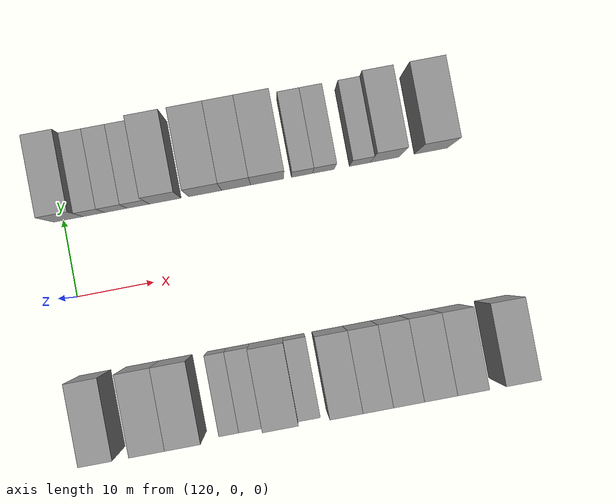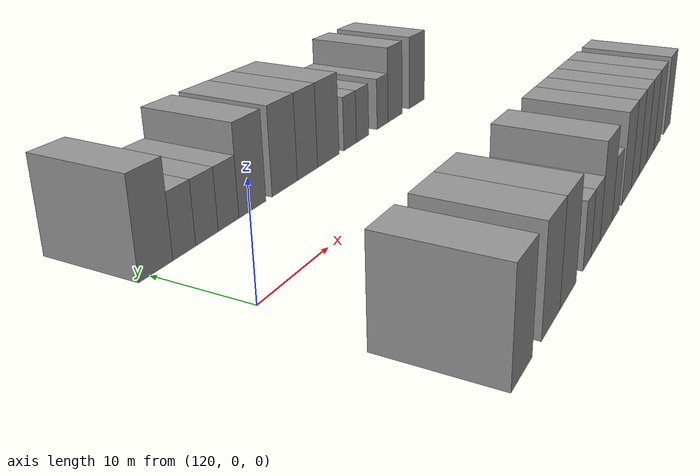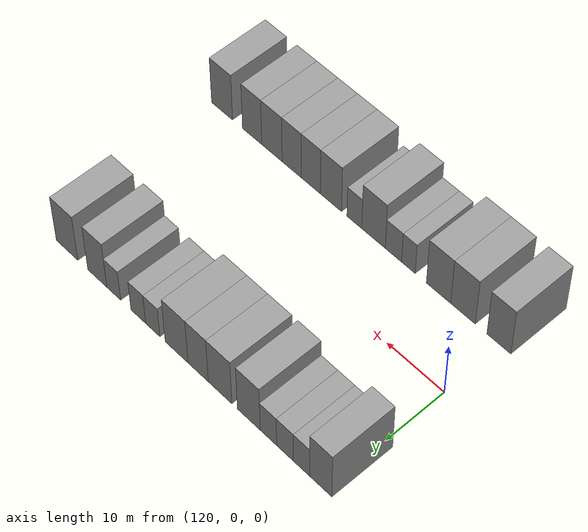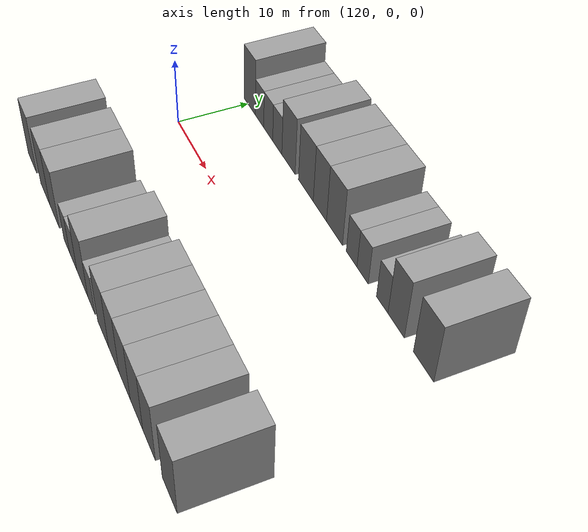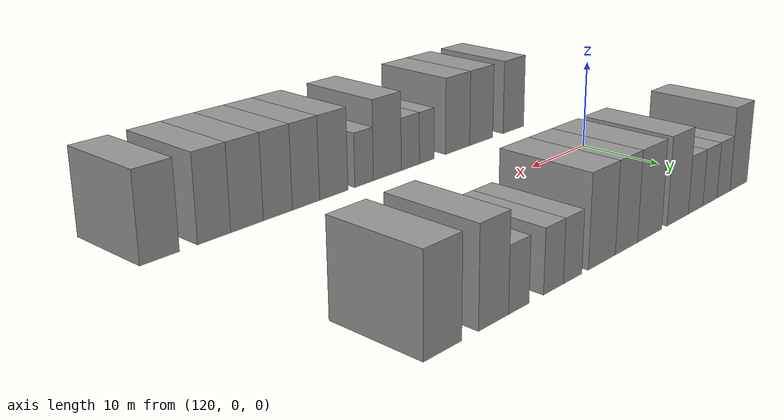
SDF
<sdf version="1.6">
 <world name="default">
  <model name="building_30">
   <static>1</static>
   <pose>120.6989 15.0000 0 0.000000 0.000000 1.570796</pose>
   <link name="link">
    <pose>0 0 4.50 0 0 0</pose>
    <collision name="collision"><geometry><box><size>10.0000 3.8567 9.0000</size></box></geometry></collision>
    <visual name="visual">
     <cast_shadows>0</cast_shadows>
     <geometry><box><size>10.0000 3.8567 9.0000</size></box></geometry>
     <material>
      <script>
       <uri>model://grey_wall/materials/scripts</uri>
       <uri>model://grey_wall/materials/textures</uri>
       <name>vrc/grey_wall</name>
      </script>
     </material>
    </visual>
   </link>
  </model>
  <model name="building_31">
   <static>1</static>
   <pose>124.0344 15.0000 0 0.000000 0.000000 1.570796</pose>
   <link name="link">
    <pose>0 0 3.00 0 0 0</pose>
    <collision name="collision"><geometry><box><size>10.0000 2.8143 6.0000</size></box></geometry></collision>
    <visual name="visual">
     <cast_shadows>0</cast_shadows>
     <geometry><box><size>10.0000 2.8143 6.0000</size></box></geometry>
     <material>
      <script>
       <uri>model://grey_wall/materials/scripts</uri>
       <uri>model://grey_wall/materials/textures</uri>
       <name>vrc/grey_wall</name>
      </script>
     </material>
    </visual>
   </link>
  </model>
  <model name="building_32">
   <static>1</static>
   <pose>126.9195 15.0000 0 0.000000 0.000000 1.570796</pose>
   <link name="link">
    <pose>0 0 3.00 0 0 0</pose>
    <collision name="collision"><geometry><box><size>10.0000 2.9560 6.0000</size></box></geometry></collision>
    <visual name="visual">
     <cast_shadows>0</cast_shadows>
     <geometry><box><size>10.0000 2.9560 6.0000</size></box></geometry>
     <material>
      <script>
       <uri>model://grey_wall/materials/scripts</uri>
       <uri>model://grey_wall/materials/textures</uri>
       <name>vrc/grey_wall</name>
      </script>
     </material>
    </visual>
   </link>
  </model>
  <model name="building_33">
   <static>1</static>
   <pose>129.8543 15.0000 0 0.000000 0.000000 1.570796</pose>
   <link name="link">
    <pose>0 0 3.00 0 0 0</pose>
    <collision name="collision"><geometry><box><size>10.0000 2.9135 6.0000</size></box></geometry></collision>
    <visual name="visual">
     <cast_shadows>0</cast_shadows>
     <geometry><box><size>10.0000 2.9135 6.0000</size></box></geometry>
     <material>
      <script>
       <uri>model://grey_wall/materials/scripts</uri>
       <uri>model://grey_wall/materials/textures</uri>
       <name>vrc/grey_wall</name>
      </script>
     </material>
    </visual>
   </link>
  </model>
  <model name="building_34">
   <static>1</static>
   <pose>133.3670 15.0000 0 0.000000 0.000000 1.570796</pose>
   <link name="link">
    <pose>0 0 4.50 0 0 0</pose>
    <collision name="collision"><geometry><box><size>10.0000 4.1120 9.0000</size></box></geometry></collision>
    <visual name="visual">
     <cast_shadows>0</cast_shadows>
     <geometry><box><size>10.0000 4.1120 9.0000</size></box></geometry>
     <material>
      <script>
       <uri>model://grey_wall/materials/scripts</uri>
       <uri>model://grey_wall/materials/textures</uri>
       <name>vrc/grey_wall</name>
      </script>
     </material>
    </visual>
   </link>
  </model>
  <model name="building_35">
   <static>1</static>
   <pose>138.5876 15.0000 0 0.000000 0.000000 1.570796</pose>
   <link name="link">
    <pose>0 0 4.50 0 0 0</pose>
    <collision name="collision"><geometry><box><size>10.0000 4.3291 9.0000</size></box></geometry></collision>
    <visual name="visual">
     <cast_shadows>0</cast_shadows>
     <geometry><box><size>10.0000 4.3291 9.0000</size></box></geometry>
     <material>
      <script>
       <uri>model://grey_wall/materials/scripts</uri>
       <uri>model://grey_wall/materials/textures</uri>
       <name>vrc/grey_wall</name>
      </script>
     </material>
    </visual>
   </link>
  </model>
  <model name="building_36">
   <static>1</static>
   <pose>142.6319 15.0000 0 0.000000 0.000000 1.570796</pose>
   <link name="link">
    <pose>0 0 4.50 0 0 0</pose>
    <collision name="collision"><geometry><box><size>10.0000 3.7596 9.0000</size></box></geometry></collision>
    <visual name="visual">
     <cast_shadows>0</cast_shadows>
     <geometry><box><size>10.0000 3.7596 9.0000</size></box></geometry>
     <material>
      <script>
       <uri>model://grey_wall/materials/scripts</uri>
       <uri>model://grey_wall/materials/textures</uri>
       <name>vrc/grey_wall</name>
      </script>
     </material>
    </visual>
   </link>
  </model>
  <model name="building_37">
   <static>1</static>
   <pose>146.6720 15.0000 0 0.000000 0.000000 1.570796</pose>
   <link name="link">
    <pose>0 0 4.50 0 0 0</pose>
    <collision name="collision"><geometry><box><size>10.0000 4.3206 9.0000</size></box></geometry></collision>
    <visual name="visual">
     <cast_shadows>0</cast_shadows>
     <geometry><box><size>10.0000 4.3206 9.0000</size></box></geometry>
     <material>
      <script>
       <uri>model://grey_wall/materials/scripts</uri>
       <uri>model://grey_wall/materials/textures</uri>
       <name>vrc/grey_wall</name>
      </script>
     </material>
    </visual>
   </link>
  </model>
  <model name="building_38">
   <static>1</static>
   <pose>151.2059 15.0000 0 0.000000 0.000000 1.570796</pose>
   <link name="link">
    <pose>0 0 3.00 0 0 0</pose>
    <collision name="collision"><geometry><box><size>10.0000 2.7472 6.0000</size></box></geometry></collision>
    <visual name="visual">
     <cast_shadows>0</cast_shadows>
     <geometry><box><size>10.0000 2.7472 6.0000</size></box></geometry>
     <material>
      <script>
       <uri>model://grey_wall/materials/scripts</uri>
       <uri>model://grey_wall/materials/textures</uri>
       <name>vrc/grey_wall</name>
      </script>
     </material>
    </visual>
   </link>
  </model>
  <model name="building_39">
   <static>1</static>
   <pose>153.9997 15.0000 0 0.000000 0.000000 1.570796</pose>
   <link name="link">
    <pose>0 0 3.00 0 0 0</pose>
    <collision name="collision"><geometry><box><size>10.0000 2.8406 6.0000</size></box></geometry></collision>
    <visual name="visual">
     <cast_shadows>0</cast_shadows>
     <geometry><box><size>10.0000 2.8406 6.0000</size></box></geometry>
     <material>
      <script>
       <uri>model://grey_wall/materials/scripts</uri>
       <uri>model://grey_wall/materials/textures</uri>
       <name>vrc/grey_wall</name>
      </script>
     </material>
    </visual>
   </link>
  </model>
  <model name="building_40">
   <static>1</static>
   <pose>158.7817 15.0000 0 0.000000 0.000000 1.570796</pose>
   <link name="link">
    <pose>0 0 3.00 0 0 0</pose>
    <collision name="collision"><geometry><box><size>10.0000 2.7233 6.0000</size></box></geometry></collision>
    <visual name="visual">
     <cast_shadows>0</cast_shadows>
     <geometry><box><size>10.0000 2.7233 6.0000</size></box></geometry>
     <material>
      <script>
       <uri>model://grey_wall/materials/scripts</uri>
       <uri>model://grey_wall/materials/textures</uri>
       <name>vrc/grey_wall</name>
      </script>
     </material>
    </visual>
   </link>
  </model>
  <model name="building_41">
   <static>1</static>
   <pose>162.0331 15.0000 0 0.000000 0.000000 1.570796</pose>
   <link name="link">
    <pose>0 0 4.50 0 0 0</pose>
    <collision name="collision"><geometry><box><size>10.0000 3.7794 9.0000</size></box></geometry></collision>
    <visual name="visual">
     <cast_shadows>0</cast_shadows>
     <geometry><box><size>10.0000 3.7794 9.0000</size></box></geometry>
     <material>
      <script>
       <uri>model://grey_wall/materials/scripts</uri>
       <uri>model://grey_wall/materials/textures</uri>
       <name>vrc/grey_wall</name>
      </script>
     </material>
    </visual>
   </link>
  </model>
  <model name="building_42">
   <static>1</static>
   <pose>168.1089 15.0000 0 0.000000 0.000000 1.570796</pose>
   <link name="link">
    <pose>0 0 4.50 0 0 0</pose>
    <collision name="collision"><geometry><box><size>10.0000 4.3722 9.0000</size></box></geometry></collision>
    <visual name="visual">
     <cast_shadows>0</cast_shadows>
     <geometry><box><size>10.0000 4.3722 9.0000</size></box></geometry>
     <material>
      <script>
       <uri>model://grey_wall/materials/scripts</uri>
       <uri>model://grey_wall/materials/textures</uri>
       <name>vrc/grey_wall</name>
      </script>
     </material>
    </visual>
   </link>
  </model>
  <model name="building_80">
   <static>1</static>
   <pose>120.4214 -15.0000 0 0.000000 0.000000 1.570796</pose>
   <link name="link">
    <pose>0 0 4.50 0 0 0</pose>
    <collision name="collision"><geometry><box><size>10.0000 4.1234 9.0000</size></box></geometry></collision>
    <visual name="visual">
     <cast_shadows>0</cast_shadows>
     <geometry><box><size>10.0000 4.1234 9.0000</size></box></geometry>
     <material>
      <script>
       <uri>model://grey_wall/materials/scripts</uri>
       <uri>model://grey_wall/materials/textures</uri>
       <name>vrc/grey_wall</name>
      </script>
     </material>
    </visual>
   </link>
  </model>
  <model name="building_81">
   <static>1</static>
   <pose>126.6427 -15.0000 0 0.000000 0.000000 1.570796</pose>
   <link name="link">
    <pose>0 0 4.50 0 0 0</pose>
    <collision name="collision"><geometry><box><size>10.0000 4.3193 9.0000</size></box></geometry></collision>
    <visual name="visual">
     <cast_shadows>0</cast_shadows>
     <geometry><box><size>10.0000 4.3193 9.0000</size></box></geometry>
     <material>
      <script>
       <uri>model://grey_wall/materials/scripts</uri>
       <uri>model://grey_wall/materials/textures</uri>
       <name>vrc/grey_wall</name>
      </script>
     </material>
    </visual>
   </link>
  </model>
  <model name="building_82">
   <static>1</static>
   <pose>130.9593 -15.0000 0 0.000000 0.000000 1.570796</pose>
   <link name="link">
    <pose>0 0 4.50 0 0 0</pose>
    <collision name="collision"><geometry><box><size>10.0000 4.3139 9.0000</size></box></geometry></collision>
    <visual name="visual">
     <cast_shadows>0</cast_shadows>
     <geometry><box><size>10.0000 4.3139 9.0000</size></box></geometry>
     <material>
      <script>
       <uri>model://grey_wall/materials/scripts</uri>
       <uri>model://grey_wall/materials/textures</uri>
       <name>vrc/grey_wall</name>
      </script>
     </material>
    </visual>
   </link>
  </model>
  <model name="building_83">
   <static>1</static>
   <pose>136.3470 -15.0000 0 0.000000 0.000000 1.570796</pose>
   <link name="link">
    <pose>0 0 3.00 0 0 0</pose>
    <collision name="collision"><geometry><box><size>10.0000 2.4614 6.0000</size></box></geometry></collision>
    <visual name="visual">
     <cast_shadows>0</cast_shadows>
     <geometry><box><size>10.0000 2.4614 6.0000</size></box></geometry>
     <material>
      <script>
       <uri>model://grey_wall/materials/scripts</uri>
       <uri>model://grey_wall/materials/textures</uri>
       <name>vrc/grey_wall</name>
      </script>
     </material>
    </visual>
   </link>
  </model>
  <model name="building_84">
   <static>1</static>
   <pose>139.0658 -15.0000 0 0.000000 0.000000 1.570796</pose>
   <link name="link">
    <pose>0 0 3.00 0 0 0</pose>
    <collision name="collision"><geometry><box><size>10.0000 2.9762 6.0000</size></box></geometry></collision>
    <visual name="visual">
     <cast_shadows>0</cast_shadows>
     <geometry><box><size>10.0000 2.9762 6.0000</size></box></geometry>
     <material>
      <script>
       <uri>model://grey_wall/materials/scripts</uri>
       <uri>model://grey_wall/materials/textures</uri>
       <name>vrc/grey_wall</name>
      </script>
     </material>
    </visual>
   </link>
  </model>
  <model name="building_85">
   <static>1</static>
   <pose>142.7336 -15.0000 0 0.000000 0.000000 1.570796</pose>
   <link name="link">
    <pose>0 0 4.50 0 0 0</pose>
    <collision name="collision"><geometry><box><size>10.0000 4.3595 9.0000</size></box></geometry></collision>
    <visual name="visual">
     <cast_shadows>0</cast_shadows>
     <geometry><box><size>10.0000 4.3595 9.0000</size></box></geometry>
     <material>
      <script>
       <uri>model://grey_wall/materials/scripts</uri>
       <uri>model://grey_wall/materials/textures</uri>
       <name>vrc/grey_wall</name>
      </script>
     </material>
    </visual>
   </link>
  </model>
  <model name="building_86">
   <static>1</static>
   <pose>146.2999 -15.0000 0 0.000000 0.000000 1.570796</pose>
   <link name="link">
    <pose>0 0 3.00 0 0 0</pose>
    <collision name="collision"><geometry><box><size>10.0000 2.7732 6.0000</size></box></geometry></collision>
    <visual name="visual">
     <cast_shadows>0</cast_shadows>
     <geometry><box><size>10.0000 2.7732 6.0000</size></box></geometry>
     <material>
      <script>
       <uri>model://grey_wall/materials/scripts</uri>
       <uri>model://grey_wall/materials/textures</uri>
       <name>vrc/grey_wall</name>
      </script>
     </material>
    </visual>
   </link>
  </model>
  <model name="building_87">
   <static>1</static>
   <pose>150.6933 -15.0000 0 0.000000 0.000000 1.570796</pose>
   <link name="link">
    <pose>0 0 4.50 0 0 0</pose>
    <collision name="collision"><geometry><box><size>10.0000 4.0137 9.0000</size></box></geometry></collision>
    <visual name="visual">
     <cast_shadows>0</cast_shadows>
     <geometry><box><size>10.0000 4.0137 9.0000</size></box></geometry>
     <material>
      <script>
       <uri>model://grey_wall/materials/scripts</uri>
       <uri>model://grey_wall/materials/textures</uri>
       <name>vrc/grey_wall</name>
      </script>
     </material>
    </visual>
   </link>
  </model>
  <model name="building_88">
   <static>1</static>
   <pose>154.5377 -15.0000 0 0.000000 0.000000 1.570796</pose>
   <link name="link">
    <pose>0 0 4.50 0 0 0</pose>
    <collision name="collision"><geometry><box><size>10.0000 3.6751 9.0000</size></box></geometry></collision>
    <visual name="visual">
     <cast_shadows>0</cast_shadows>
     <geometry><box><size>10.0000 3.6751 9.0000</size></box></geometry>
     <material>
      <script>
       <uri>model://grey_wall/materials/scripts</uri>
       <uri>model://grey_wall/materials/textures</uri>
       <name>vrc/grey_wall</name>
      </script>
     </material>
    </visual>
   </link>
  </model>
  <model name="building_89">
   <static>1</static>
   <pose>158.2363 -15.0000 0 0.000000 0.000000 1.570796</pose>
   <link name="link">
    <pose>0 0 4.50 0 0 0</pose>
    <collision name="collision"><geometry><box><size>10.0000 3.7220 9.0000</size></box></geometry></collision>
    <visual name="visual">
     <cast_shadows>0</cast_shadows>
     <geometry><box><size>10.0000 3.7220 9.0000</size></box></geometry>
     <material>
      <script>
       <uri>model://grey_wall/materials/scripts</uri>
       <uri>model://grey_wall/materials/textures</uri>
       <name>vrc/grey_wall</name>
      </script>
     </material>
    </visual>
   </link>
  </model>
  <model name="building_90">
   <static>1</static>
   <pose>162.0992 -15.0000 0 0.000000 0.000000 1.570796</pose>
   <link name="link">
    <pose>0 0 4.50 0 0 0</pose>
    <collision name="collision"><geometry><box><size>10.0000 4.0039 9.0000</size></box></geometry></collision>
    <visual name="visual">
     <cast_shadows>0</cast_shadows>
     <geometry><box><size>10.0000 4.0039 9.0000</size></box></geometry>
     <material>
      <script>
       <uri>model://grey_wall/materials/scripts</uri>
       <uri>model://grey_wall/materials/textures</uri>
       <name>vrc/grey_wall</name>
      </script>
     </material>
    </visual>
   </link>
  </model>
  <model name="building_91">
   <static>1</static>
   <pose>166.0204 -15.0000 0 0.000000 0.000000 1.570796</pose>
   <link name="link">
    <pose>0 0 4.50 0 0 0</pose>
    <collision name="collision"><geometry><box><size>10.0000 3.8385 9.0000</size></box></geometry></collision>
    <visual name="visual">
     <cast_shadows>0</cast_shadows>
     <geometry><box><size>10.0000 3.8385 9.0000</size></box></geometry>
     <material>
      <script>
       <uri>model://grey_wall/materials/scripts</uri>
       <uri>model://grey_wall/materials/textures</uri>
       <name>vrc/grey_wall</name>
      </script>
     </material>
    </visual>
   </link>
  </model>
  <model name="building_92">
   <static>1</static>
   <pose>172.0597 -15.0000 0 0.000000 0.000000 1.570796</pose>
   <link name="link">
    <pose>0 0 4.50 0 0 0</pose>
    <collision name="collision"><geometry><box><size>10.0000 4.2402 9.0000</size></box></geometry></collision>
    <visual name="visual">
     <cast_shadows>0</cast_shadows>
     <geometry><box><size>10.0000 4.2402 9.0000</size></box></geometry>
     <material>
      <script>
       <uri>model://grey_wall/materials/scripts</uri>
       <uri>model://grey_wall/materials/textures</uri>
       <name>vrc/grey_wall</name>
      </script>
     </material>
    </visual>
   </link>
  </model>
 </world>
</sdf>
